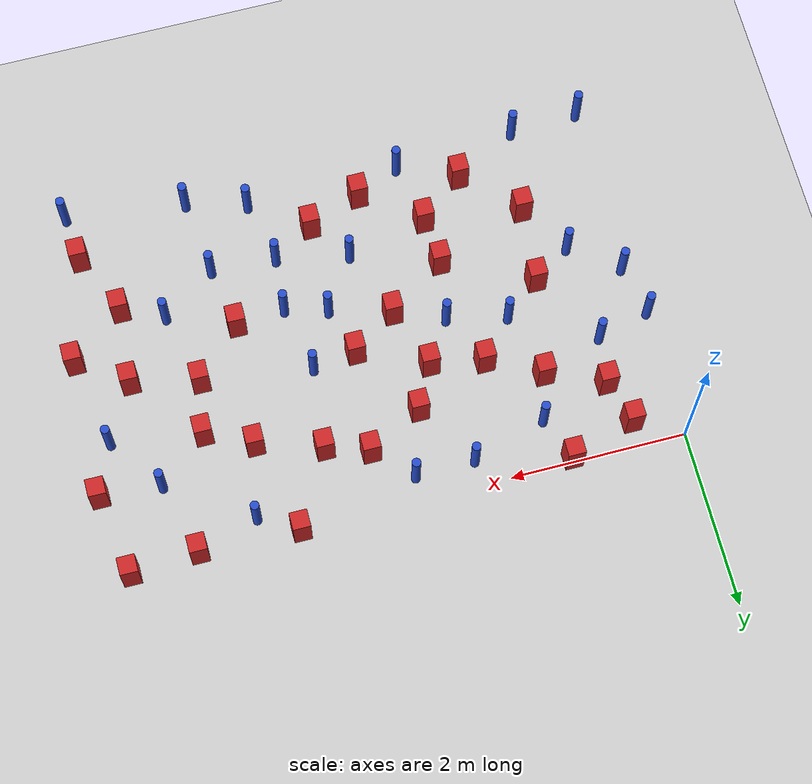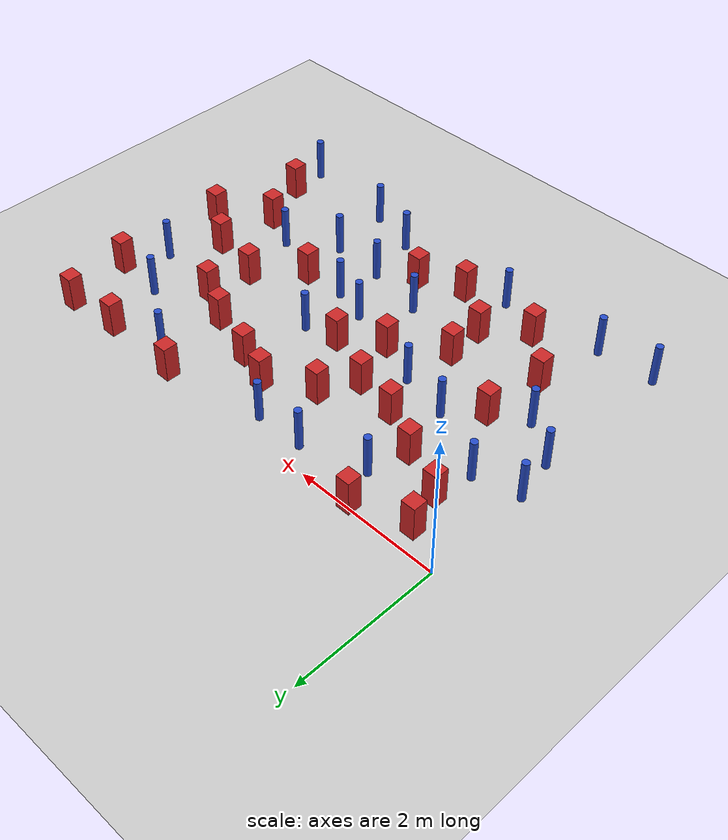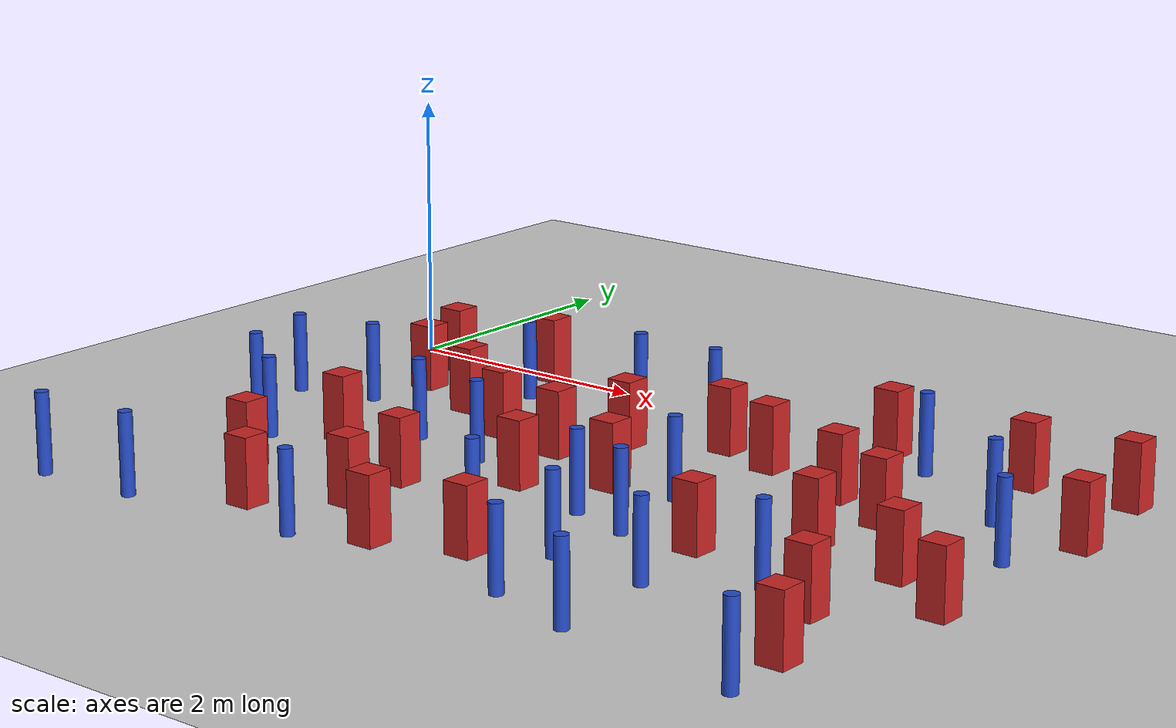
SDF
<sdf version="1.6">
 <world name="default">
  <model name="ground_plane">
   <static>1</static>
   <link name="link">
    <collision name="collision">
     <geometry><plane><normal>0 0 1</normal><size>100 100</size></plane></geometry>
     <surface><friction><ode><mu>100</mu><mu2>50</mu2></ode></friction></surface>
    </collision>
    <visual name="visual">
     <cast_shadows>0</cast_shadows>
     <geometry><plane><normal>0 0 1</normal><size>100 100</size></plane></geometry>
     <material>
      <ambient>1.0 1.0 1.0 1.0</ambient>
      <diffuse>0.8 0.8 0.8 1.0</diffuse>
      <specular>0.01 0.01 0.01 1.000000</specular>
     </material>
    </visual>
   </link>
  </model>
  <model name="NamedLocations">
   <static>true</static>
   <link name="DefaultStart"><pose>8.5 0 0 0 0 3.14</pose></link>
  </model>
  <model name="pole_obstacle0">
   <static>true</static>
   <pose>0.880135995998 -4.03369669981 2.88873142074e-08 -9.90536689879e-09 4.60219948988e-07 -1.20965994961e-07</pose>
   <link name="link">
    <pose>0 0 0.3 0 -0 0</pose>
    <inertial>
     <mass>1</mass>
     <inertia><ixx>0.145833</ixx><ixy>0</ixy><ixz>0</ixz><iyy>0.145833</iyy><iyz>0</iyz><izz>0.125</izz></inertia>
    </inertial>
    <collision name="collision">
     <geometry><cylinder><radius>0.05</radius><length>.6</length></cylinder></geometry>
    </collision>
    <visual name="visual">
     <geometry><cylinder><radius>0.05</radius><length>.6</length></cylinder></geometry>
     <material>
      <script><name>Gazebo/Blue</name><uri>file://media/materials/scripts/gazebo.material</uri></script>
     </material>
    </visual>
   </link>
  </model>
  <model name="pole_obstacle5">
   <static>true</static>
   <pose>3.96144716904 -2.53710015509 2.88873142074e-08 -9.90536690919e-09 4.60219948964e-07 -1.20965994979e-07</pose>
   <link name="link">
    <pose>0 0 0.3 0 -0 0</pose>
    <inertial>
     <mass>1</mass>
     <inertia><ixx>0.145833</ixx><ixy>0</ixy><ixz>0</ixz><iyy>0.145833</iyy><iyz>0</iyz><izz>0.125</izz></inertia>
    </inertial>
    <collision name="collision">
     <geometry><cylinder><radius>0.05</radius><length>.6</length></cylinder></geometry>
    </collision>
    <visual name="visual">
     <geometry><cylinder><radius>0.05</radius><length>.6</length></cylinder></geometry>
     <material>
      <script><name>Gazebo/Blue</name><uri>file://media/materials/scripts/gazebo.material</uri></script>
     </material>
    </visual>
   </link>
  </model>
  <model name="square_post_obstacle4">
   <static>true</static>
   <pose>5.06880561041 -1.93774286061 8.22691968438e-08 7.2212513382e-06 -7.54495500217e-07 2.29674213826e-05</pose>
   <link name="link">
    <pose>0 0 0.25 0 -0 0</pose>
    <inertial>
     <mass>100</mass>
     <inertia>
      <ixx>0.166667</ixx>
      <ixy>0</ixy>
      <ixz>0</ixz>
      <iyy>0.166667</iyy>
      <iyz>0</iyz>
      <izz>0.166667</izz>
     </inertia>
    </inertial>
    <collision name="collision"><geometry><box><size>.2 .2 .5</size></box></geometry></collision>
    <visual name="visual">
     <geometry><box><size>.2 .2 .5</size></box></geometry>
     <material>
      <script><name>Gazebo/Red</name><uri>file://media/materials/scripts/gazebo.material</uri></script>
     </material>
    </visual>
   </link>
  </model>
  <model name="pole_obstacle10">
   <static>true</static>
   <pose>3.81010568712 -1.76509671194 2.88873142074e-08 -9.90536689395e-09 4.60219949e-07 -1.20965994953e-07</pose>
   <link name="link">
    <pose>0 0 0.3 0 -0 0</pose>
    <inertial>
     <mass>1</mass>
     <inertia><ixx>0.145833</ixx><ixy>0</ixy><ixz>0</ixz><iyy>0.145833</iyy><iyz>0</iyz><izz>0.125</izz></inertia>
    </inertial>
    <collision name="collision">
     <geometry><cylinder><radius>0.05</radius><length>.6</length></cylinder></geometry>
    </collision>
    <visual name="visual">
     <geometry><cylinder><radius>0.05</radius><length>.6</length></cylinder></geometry>
     <material>
      <script><name>Gazebo/Blue</name><uri>file://media/materials/scripts/gazebo.material</uri></script>
     </material>
    </visual>
   </link>
  </model>
  <model name="pole_obstacle12">
   <static>true</static>
   <pose>2.34664239557 -0.272803003717 2.88873142074e-08 -9.90536692022e-09 4.60219948938e-07 -1.20965994984e-07</pose>
   <link name="link">
    <pose>0 0 0.3 0 -0 0</pose>
    <inertial>
     <mass>1</mass>
     <inertia><ixx>0.145833</ixx><ixy>0</ixy><ixz>0</ixz><iyy>0.145833</iyy><iyz>0</iyz><izz>0.125</izz></inertia>
    </inertial>
    <collision name="collision">
     <geometry><cylinder><radius>0.05</radius><length>.6</length></cylinder></geometry>
    </collision>
    <visual name="visual">
     <geometry><cylinder><radius>0.05</radius><length>.6</length></cylinder></geometry>
     <material>
      <script><name>Gazebo/Blue</name><uri>file://media/materials/scripts/gazebo.material</uri></script>
     </material>
    </visual>
   </link>
  </model>
  <model name="pole_obstacle21">
   <static>true</static>
   <pose>3.47930066305 -2.39734856119 2.88873142074e-08 -9.90536690232e-09 4.6021994898e-07 -1.20965994968e-07</pose>
   <link name="link">
    <pose>0 0 0.3 0 -0 0</pose>
    <inertial>
     <mass>1</mass>
     <inertia><ixx>0.145833</ixx><ixy>0</ixy><ixz>0</ixz><iyy>0.145833</iyy><iyz>0</iyz><izz>0.125</izz></inertia>
    </inertial>
    <collision name="collision">
     <geometry><cylinder><radius>0.05</radius><length>.6</length></cylinder></geometry>
    </collision>
    <visual name="visual">
     <geometry><cylinder><radius>0.05</radius><length>.6</length></cylinder></geometry>
     <material>
      <script><name>Gazebo/Blue</name><uri>file://media/materials/scripts/gazebo.material</uri></script>
     </material>
    </visual>
   </link>
  </model>
  <model name="square_post_obstacle19">
   <static>true</static>
   <pose>6.29166822977 0.0331094307546 8.22691968438e-08 7.2212513382e-06 -7.54495500217e-07 2.29674213826e-05</pose>
   <link name="link">
    <pose>0 0 0.25 0 -0 0</pose>
    <inertial>
     <mass>100</mass>
     <inertia>
      <ixx>0.166667</ixx>
      <ixy>0</ixy>
      <ixz>0</ixz>
      <iyy>0.166667</iyy>
      <iyz>0</iyz>
      <izz>0.166667</izz>
     </inertia>
    </inertial>
    <collision name="collision"><geometry><box><size>.2 .2 .5</size></box></geometry></collision>
    <visual name="visual">
     <geometry><box><size>.2 .2 .5</size></box></geometry>
     <material>
      <script><name>Gazebo/Red</name><uri>file://media/materials/scripts/gazebo.material</uri></script>
     </material>
    </visual>
   </link>
  </model>
  <model name="square_post_obstacle27">
   <static>true</static>
   <pose>5.52196709119 -0.020975182786 8.22691968438e-08 7.2212513382e-06 -7.54495500217e-07 2.29674213826e-05</pose>
   <link name="link">
    <pose>0 0 0.25 0 -0 0</pose>
    <inertial>
     <mass>100</mass>
     <inertia>
      <ixx>0.166667</ixx>
      <ixy>0</ixy>
      <ixz>0</ixz>
      <iyy>0.166667</iyy>
      <iyz>0</iyz>
      <izz>0.166667</izz>
     </inertia>
    </inertial>
    <collision name="collision"><geometry><box><size>.2 .2 .5</size></box></geometry></collision>
    <visual name="visual">
     <geometry><box><size>.2 .2 .5</size></box></geometry>
     <material>
      <script><name>Gazebo/Red</name><uri>file://media/materials/scripts/gazebo.material</uri></script>
     </material>
    </visual>
   </link>
  </model>
  <model name="pole_obstacle36">
   <static>true</static>
   <pose>1.53632306449 -1.81702683565 2.88873142074e-08 -9.90536689672e-09 4.60219948993e-07 -1.20965994959e-07</pose>
   <link name="link">
    <pose>0 0 0.3 0 -0 0</pose>
    <inertial>
     <mass>1</mass>
     <inertia><ixx>0.145833</ixx><ixy>0</ixy><ixz>0</ixz><iyy>0.145833</iyy><iyz>0</iyz><izz>0.125</izz></inertia>
    </inertial>
    <collision name="collision">
     <geometry><cylinder><radius>0.05</radius><length>.6</length></cylinder></geometry>
    </collision>
    <visual name="visual">
     <geometry><cylinder><radius>0.05</radius><length>.6</length></cylinder></geometry>
     <material>
      <script><name>Gazebo/Blue</name><uri>file://media/materials/scripts/gazebo.material</uri></script>
     </material>
    </visual>
   </link>
  </model>
  <model name="pole_obstacle37">
   <static>true</static>
   <pose>0.0818878807055 -4.07859849476 2.88873142074e-08 -9.90536689742e-09 4.60219948992e-07 -1.2096599496e-07</pose>
   <link name="link">
    <pose>0 0 0.3 0 -0 0</pose>
    <inertial>
     <mass>1</mass>
     <inertia><ixx>0.145833</ixx><ixy>0</ixy><ixz>0</ixz><iyy>0.145833</iyy><iyz>0</iyz><izz>0.125</izz></inertia>
    </inertial>
    <collision name="collision">
     <geometry><cylinder><radius>0.05</radius><length>.6</length></cylinder></geometry>
    </collision>
    <visual name="visual">
     <geometry><cylinder><radius>0.05</radius><length>.6</length></cylinder></geometry>
     <material>
      <script><name>Gazebo/Blue</name><uri>file://media/materials/scripts/gazebo.material</uri></script>
     </material>
    </visual>
   </link>
  </model>
  <model name="pole_obstacle38">
   <static>true</static>
   <pose>4.06663133027 -3.89603629017 2.88873142074e-08 -9.90536690245e-09 4.6021994898e-07 -1.20965994966e-07</pose>
   <link name="link">
    <pose>0 0 0.3 0 -0 0</pose>
    <inertial>
     <mass>1</mass>
     <inertia><ixx>0.145833</ixx><ixy>0</ixy><ixz>0</ixz><iyy>0.145833</iyy><iyz>0</iyz><izz>0.125</izz></inertia>
    </inertial>
    <collision name="collision">
     <geometry><cylinder><radius>0.05</radius><length>.6</length></cylinder></geometry>
    </collision>
    <visual name="visual">
     <geometry><cylinder><radius>0.05</radius><length>.6</length></cylinder></geometry>
     <material>
      <script><name>Gazebo/Blue</name><uri>file://media/materials/scripts/gazebo.material</uri></script>
     </material>
    </visual>
   </link>
  </model>
  <model name="pole_obstacle40">
   <static>true</static>
   <pose>1.48844902401 -0.533631812081 2.88873142074e-08 -9.90536689896e-09 4.60219948988e-07 -1.20965994962e-07</pose>
   <link name="link">
    <pose>0 0 0.3 0 -0 0</pose>
    <inertial>
     <mass>1</mass>
     <inertia><ixx>0.145833</ixx><ixy>0</ixy><ixz>0</ixz><iyy>0.145833</iyy><iyz>0</iyz><izz>0.125</izz></inertia>
    </inertial>
    <collision name="collision">
     <geometry><cylinder><radius>0.05</radius><length>.6</length></cylinder></geometry>
    </collision>
    <visual name="visual">
     <geometry><cylinder><radius>0.05</radius><length>.6</length></cylinder></geometry>
     <material>
      <script><name>Gazebo/Blue</name><uri>file://media/materials/scripts/gazebo.material</uri></script>
     </material>
    </visual>
   </link>
  </model>
  <model name="pole_obstacle42">
   <static>true</static>
   <pose>3.08162810679 -2.99361022782 2.88873142074e-08 -9.90536690232e-09 4.6021994898e-07 -1.20965994968e-07</pose>
   <link name="link">
    <pose>0 0 0.3 0 -0 0</pose>
    <inertial>
     <mass>1</mass>
     <inertia><ixx>0.145833</ixx><ixy>0</ixy><ixz>0</ixz><iyy>0.145833</iyy><iyz>0</iyz><izz>0.125</izz></inertia>
    </inertial>
    <collision name="collision">
     <geometry><cylinder><radius>0.05</radius><length>.6</length></cylinder></geometry>
    </collision>
    <visual name="visual">
     <geometry><cylinder><radius>0.05</radius><length>.6</length></cylinder></geometry>
     <material>
      <script><name>Gazebo/Blue</name><uri>file://media/materials/scripts/gazebo.material</uri></script>
     </material>
    </visual>
   </link>
  </model>
  <model name="square_post_obstacle42">
   <static>true</static>
   <pose>5.75782111801 -2.99787388884 8.22691968438e-08 7.2212513382e-06 -7.54495500217e-07 2.29674213826e-05</pose>
   <link name="link">
    <pose>0 0 0.25 0 -0 0</pose>
    <inertial>
     <mass>100</mass>
     <inertia>
      <ixx>0.166667</ixx>
      <ixy>0</ixy>
      <ixz>0</ixz>
      <iyy>0.166667</iyy>
      <iyz>0</iyz>
      <izz>0.166667</izz>
     </inertia>
    </inertial>
    <collision name="collision"><geometry><box><size>.2 .2 .5</size></box></geometry></collision>
    <visual name="visual">
     <geometry><box><size>.2 .2 .5</size></box></geometry>
     <material>
      <script><name>Gazebo/Red</name><uri>file://media/materials/scripts/gazebo.material</uri></script>
     </material>
    </visual>
   </link>
  </model>
  <model name="pole_obstacle58">
   <static>true</static>
   <pose>0.124869947321 -2.06352819971 2.88873142074e-08 -9.905366898e-09 4.6021994899e-07 -1.2096599496e-07</pose>
   <link name="link">
    <pose>0 0 0.3 0 -0 0</pose>
    <inertial>
     <mass>1</mass>
     <inertia><ixx>0.145833</ixx><ixy>0</ixy><ixz>0</ixz><iyy>0.145833</iyy><iyz>0</iyz><izz>0.125</izz></inertia>
    </inertial>
    <collision name="collision">
     <geometry><cylinder><radius>0.05</radius><length>.6</length></cylinder></geometry>
    </collision>
    <visual name="visual">
     <geometry><cylinder><radius>0.05</radius><length>.6</length></cylinder></geometry>
     <material>
      <script><name>Gazebo/Blue</name><uri>file://media/materials/scripts/gazebo.material</uri></script>
     </material>
    </visual>
   </link>
  </model>
  <model name="square_post_obstacle49">
   <static>true</static>
   <pose>3.91805140849 -0.824429768619 8.22691968438e-08 7.2212513382e-06 -7.54495500217e-07 2.29674213826e-05</pose>
   <link name="link">
    <pose>0 0 0.25 0 -0 0</pose>
    <inertial>
     <mass>100</mass>
     <inertia>
      <ixx>0.166667</ixx>
      <ixy>0</ixy>
      <ixz>0</ixz>
      <iyy>0.166667</iyy>
      <iyz>0</iyz>
      <izz>0.166667</izz>
     </inertia>
    </inertial>
    <collision name="collision"><geometry><box><size>.2 .2 .5</size></box></geometry></collision>
    <visual name="visual">
     <geometry><box><size>.2 .2 .5</size></box></geometry>
     <material>
      <script><name>Gazebo/Red</name><uri>file://media/materials/scripts/gazebo.material</uri></script>
     </material>
    </visual>
   </link>
  </model>
  <model name="pole_obstacle64">
   <static>true</static>
   <pose>0.000662981833559 -1.47923829137 2.88873142074e-08 -9.90536690093e-09 4.60219948983e-07 -1.20965994964e-07</pose>
   <link name="link">
    <pose>0 0 0.3 0 -0 0</pose>
    <inertial>
     <mass>1</mass>
     <inertia><ixx>0.145833</ixx><ixy>0</ixy><ixz>0</ixz><iyy>0.145833</iyy><iyz>0</iyz><izz>0.125</izz></inertia>
    </inertial>
    <collision name="collision">
     <geometry><cylinder><radius>0.05</radius><length>.6</length></cylinder></geometry>
    </collision>
    <visual name="visual">
     <geometry><cylinder><radius>0.05</radius><length>.6</length></cylinder></geometry>
     <material>
      <script><name>Gazebo/Blue</name><uri>file://media/materials/scripts/gazebo.material</uri></script>
     </material>
    </visual>
   </link>
  </model>
  <model name="pole_obstacle68">
   <static>true</static>
   <pose>4.75526428016 -4.09671443555 2.88873142074e-08 -9.90536690842e-09 4.60219948965e-07 -1.20965994976e-07</pose>
   <link name="link">
    <pose>0 0 0.3 0 -0 0</pose>
    <inertial>
     <mass>1</mass>
     <inertia><ixx>0.145833</ixx><ixy>0</ixy><ixz>0</ixz><iyy>0.145833</iyy><iyz>0</iyz><izz>0.125</izz></inertia>
    </inertial>
    <collision name="collision">
     <geometry><cylinder><radius>0.05</radius><length>.6</length></cylinder></geometry>
    </collision>
    <visual name="visual">
     <geometry><cylinder><radius>0.05</radius><length>.6</length></cylinder></geometry>
     <material>
      <script><name>Gazebo/Blue</name><uri>file://media/materials/scripts/gazebo.material</uri></script>
     </material>
    </visual>
   </link>
  </model>
  <model name="square_post_obstacle51">
   <static>true</static>
   <pose>1.62947599661 -3.64054977438 8.22691968438e-08 7.2212513382e-06 -7.54495500217e-07 2.29674213826e-05</pose>
   <link name="link">
    <pose>0 0 0.25 0 -0 0</pose>
    <inertial>
     <mass>100</mass>
     <inertia>
      <ixx>0.166667</ixx>
      <ixy>0</ixy>
      <ixz>0</ixz>
      <iyy>0.166667</iyy>
      <iyz>0</iyz>
      <izz>0.166667</izz>
     </inertia>
    </inertial>
    <collision name="collision"><geometry><box><size>.2 .2 .5</size></box></geometry></collision>
    <visual name="visual">
     <geometry><box><size>.2 .2 .5</size></box></geometry>
     <material>
      <script><name>Gazebo/Red</name><uri>file://media/materials/scripts/gazebo.material</uri></script>
     </material>
    </visual>
   </link>
  </model>
  <model name="pole_obstacle70">
   <static>true</static>
   <pose>3.90870354363 -3.16283327793 2.88873142074e-08 -9.90536690232e-09 4.6021994898e-07 -1.20965994968e-07</pose>
   <link name="link">
    <pose>0 0 0.3 0 -0 0</pose>
    <inertial>
     <mass>1</mass>
     <inertia><ixx>0.145833</ixx><ixy>0</ixy><ixz>0</ixz><iyy>0.145833</iyy><iyz>0</iyz><izz>0.125</izz></inertia>
    </inertial>
    <collision name="collision">
     <geometry><cylinder><radius>0.05</radius><length>.6</length></cylinder></geometry>
    </collision>
    <visual name="visual">
     <geometry><cylinder><radius>0.05</radius><length>.6</length></cylinder></geometry>
     <material>
      <script><name>Gazebo/Blue</name><uri>file://media/materials/scripts/gazebo.material</uri></script>
     </material>
    </visual>
   </link>
  </model>
  <model name="square_post_obstacle62">
   <static>true</static>
   <pose>0.690230237132 -0.781380511651 8.22691968438e-08 7.2212513382e-06 -7.54495500217e-07 2.29674213826e-05</pose>
   <link name="link">
    <pose>0 0 0.25 0 -0 0</pose>
    <inertial>
     <mass>100</mass>
     <inertia>
      <ixx>0.166667</ixx>
      <ixy>0</ixy>
      <ixz>0</ixz>
      <iyy>0.166667</iyy>
      <iyz>0</iyz>
      <izz>0.166667</izz>
     </inertia>
    </inertial>
    <collision name="collision"><geometry><box><size>.2 .2 .5</size></box></geometry></collision>
    <visual name="visual">
     <geometry><box><size>.2 .2 .5</size></box></geometry>
     <material>
      <script><name>Gazebo/Red</name><uri>file://media/materials/scripts/gazebo.material</uri></script>
     </material>
    </visual>
   </link>
  </model>
  <model name="pole_obstacle80">
   <static>true</static>
   <pose>5.74605848467 -0.848301897702 2.88873142074e-08 -9.90536689837e-09 4.60219948989e-07 -1.2096599496e-07</pose>
   <link name="link">
    <pose>0 0 0.3 0 -0 0</pose>
    <inertial>
     <mass>1</mass>
     <inertia><ixx>0.145833</ixx><ixy>0</ixy><ixz>0</ixz><iyy>0.145833</iyy><iyz>0</iyz><izz>0.125</izz></inertia>
    </inertial>
    <collision name="collision">
     <geometry><cylinder><radius>0.05</radius><length>.6</length></cylinder></geometry>
    </collision>
    <visual name="visual">
     <geometry><cylinder><radius>0.05</radius><length>.6</length></cylinder></geometry>
     <material>
      <script><name>Gazebo/Blue</name><uri>file://media/materials/scripts/gazebo.material</uri></script>
     </material>
    </visual>
   </link>
  </model>
  <model name="square_post_obstacle74">
   <static>true</static>
   <pose>2.54411049904 -1.48970674147 8.22691968438e-08 7.2212513382e-06 -7.54495500217e-07 2.29674213826e-05</pose>
   <link name="link">
    <pose>0 0 0.25 0 -0 0</pose>
    <inertial>
     <mass>100</mass>
     <inertia>
      <ixx>0.166667</ixx>
      <ixy>0</ixy>
      <ixz>0</ixz>
      <iyy>0.166667</iyy>
      <iyz>0</iyz>
      <izz>0.166667</izz>
     </inertia>
    </inertial>
    <collision name="collision"><geometry><box><size>.2 .2 .5</size></box></geometry></collision>
    <visual name="visual">
     <geometry><box><size>.2 .2 .5</size></box></geometry>
     <material>
      <script><name>Gazebo/Red</name><uri>file://media/materials/scripts/gazebo.material</uri></script>
     </material>
    </visual>
   </link>
  </model>
  <model name="square_post_obstacle80">
   <static>true</static>
   <pose>4.65326316669 -1.06259303048 8.22691968438e-08 7.2212513382e-06 -7.54495500217e-07 2.29674213826e-05</pose>
   <link name="link">
    <pose>0 0 0.25 0 -0 0</pose>
    <inertial>
     <mass>100</mass>
     <inertia>
      <ixx>0.166667</ixx>
      <ixy>0</ixy>
      <ixz>0</ixz>
      <iyy>0.166667</iyy>
      <iyz>0</iyz>
      <izz>0.166667</izz>
     </inertia>
    </inertial>
    <collision name="collision"><geometry><box><size>.2 .2 .5</size></box></geometry></collision>
    <visual name="visual">
     <geometry><box><size>.2 .2 .5</size></box></geometry>
     <material>
      <script><name>Gazebo/Red</name><uri>file://media/materials/scripts/gazebo.material</uri></script>
     </material>
    </visual>
   </link>
  </model>
  <model name="square_post_obstacle85">
   <static>true</static>
   <pose>2.7859586206 -2.19226296548 8.22691968438e-08 7.2212513382e-06 -7.54495500217e-07 2.29674213826e-05</pose>
   <link name="link">
    <pose>0 0 0.25 0 -0 0</pose>
    <inertial>
     <mass>100</mass>
     <inertia>
      <ixx>0.166667</ixx>
      <ixy>0</ixy>
      <ixz>0</ixz>
      <iyy>0.166667</iyy>
      <iyz>0</iyz>
      <izz>0.166667</izz>
     </inertia>
    </inertial>
    <collision name="collision"><geometry><box><size>.2 .2 .5</size></box></geometry></collision>
    <visual name="visual">
     <geometry><box><size>.2 .2 .5</size></box></geometry>
     <material>
      <script><name>Gazebo/Red</name><uri>file://media/materials/scripts/gazebo.material</uri></script>
     </material>
    </visual>
   </link>
  </model>
  <model name="pole_obstacle93">
   <static>true</static>
   <pose>4.8255796199 -0.233756539004 2.88873142074e-08 -9.90536689628e-09 4.60219948994e-07 -1.20965994959e-07</pose>
   <link name="link">
    <pose>0 0 0.3 0 -0 0</pose>
    <inertial>
     <mass>1</mass>
     <inertia><ixx>0.145833</ixx><ixy>0</ixy><ixz>0</ixz><iyy>0.145833</iyy><iyz>0</iyz><izz>0.125</izz></inertia>
    </inertial>
    <collision name="collision">
     <geometry><cylinder><radius>0.05</radius><length>.6</length></cylinder></geometry>
    </collision>
    <visual name="visual">
     <geometry><cylinder><radius>0.05</radius><length>.6</length></cylinder></geometry>
     <material>
      <script><name>Gazebo/Blue</name><uri>file://media/materials/scripts/gazebo.material</uri></script>
     </material>
    </visual>
   </link>
  </model>
  <model name="pole_obstacle95">
   <static>true</static>
   <pose>2.21998121215 -1.97052135649 2.88873142074e-08 -9.90536689589e-09 4.60219948995e-07 -1.20965994957e-07</pose>
   <link name="link">
    <pose>0 0 0.3 0 -0 0</pose>
    <inertial>
     <mass>1</mass>
     <inertia><ixx>0.145833</ixx><ixy>0</ixy><ixz>0</ixz><iyy>0.145833</iyy><iyz>0</iyz><izz>0.125</izz></inertia>
    </inertial>
    <collision name="collision">
     <geometry><cylinder><radius>0.05</radius><length>.6</length></cylinder></geometry>
    </collision>
    <visual name="visual">
     <geometry><cylinder><radius>0.05</radius><length>.6</length></cylinder></geometry>
     <material>
      <script><name>Gazebo/Blue</name><uri>file://media/materials/scripts/gazebo.material</uri></script>
     </material>
    </visual>
   </link>
  </model>
  <model name="square_post_obstacle90">
   <static>true</static>
   <pose>1.93365326403 -1.37317515752 8.22691968438e-08 7.2212513382e-06 -7.54495500217e-07 2.29674213826e-05</pose>
   <link name="link">
    <pose>0 0 0.25 0 -0 0</pose>
    <inertial>
     <mass>100</mass>
     <inertia>
      <ixx>0.166667</ixx>
      <ixy>0</ixy>
      <ixz>0</ixz>
      <iyy>0.166667</iyy>
      <iyz>0</iyz>
      <izz>0.166667</izz>
     </inertia>
    </inertial>
    <collision name="collision"><geometry><box><size>.2 .2 .5</size></box></geometry></collision>
    <visual name="visual">
     <geometry><box><size>.2 .2 .5</size></box></geometry>
     <material>
      <script><name>Gazebo/Red</name><uri>file://media/materials/scripts/gazebo.material</uri></script>
     </material>
    </visual>
   </link>
  </model>
  <model name="square_post_obstacle93">
   <static>true</static>
   <pose>6.38420073262 -2.50634423541 8.22691968438e-08 7.2212513382e-06 -7.54495500217e-07 2.29674213826e-05</pose>
   <link name="link">
    <pose>0 0 0.25 0 -0 0</pose>
    <inertial>
     <mass>100</mass>
     <inertia>
      <ixx>0.166667</ixx>
      <ixy>0</ixy>
      <ixz>0</ixz>
      <iyy>0.166667</iyy>
      <iyz>0</iyz>
      <izz>0.166667</izz>
     </inertia>
    </inertial>
    <collision name="collision"><geometry><box><size>.2 .2 .5</size></box></geometry></collision>
    <visual name="visual">
     <geometry><box><size>.2 .2 .5</size></box></geometry>
     <material>
      <script><name>Gazebo/Red</name><uri>file://media/materials/scripts/gazebo.material</uri></script>
     </material>
    </visual>
   </link>
  </model>
  <model name="square_post_obstacle103">
   <static>true</static>
   <pose>6.07332973154 -3.72381438897 8.22691968438e-08 7.2212513382e-06 -7.54495500217e-07 2.29674213826e-05</pose>
   <link name="link">
    <pose>0 0 0.25 0 -0 0</pose>
    <inertial>
     <mass>100</mass>
     <inertia>
      <ixx>0.166667</ixx>
      <ixy>0</ixy>
      <ixz>0</ixz>
      <iyy>0.166667</iyy>
      <iyz>0</iyz>
      <izz>0.166667</izz>
     </inertia>
    </inertial>
    <collision name="collision"><geometry><box><size>.2 .2 .5</size></box></geometry></collision>
    <visual name="visual">
     <geometry><box><size>.2 .2 .5</size></box></geometry>
     <material>
      <script><name>Gazebo/Red</name><uri>file://media/materials/scripts/gazebo.material</uri></script>
     </material>
    </visual>
   </link>
  </model>
  <model name="square_post_obstacle112">
   <static>true</static>
   <pose>4.52518918425 -2.49462650083 8.22691968438e-08 7.2212513382e-06 -7.54495500217e-07 2.29674213826e-05</pose>
   <link name="link">
    <pose>0 0 0.25 0 -0 0</pose>
    <inertial>
     <mass>100</mass>
     <inertia>
      <ixx>0.166667</ixx>
      <ixy>0</ixy>
      <ixz>0</ixz>
      <iyy>0.166667</iyy>
      <iyz>0</iyz>
      <izz>0.166667</izz>
     </inertia>
    </inertial>
    <collision name="collision"><geometry><box><size>.2 .2 .5</size></box></geometry></collision>
    <visual name="visual">
     <geometry><box><size>.2 .2 .5</size></box></geometry>
     <material>
      <script><name>Gazebo/Red</name><uri>file://media/materials/scripts/gazebo.material</uri></script>
     </material>
    </visual>
   </link>
  </model>
  <model name="square_post_obstacle113">
   <static>true</static>
   <pose>5.83307297532 -2.11929926455 8.22691968438e-08 7.2212513382e-06 -7.54495500217e-07 2.29674213826e-05</pose>
   <link name="link">
    <pose>0 0 0.25 0 -0 0</pose>
    <inertial>
     <mass>100</mass>
     <inertia>
      <ixx>0.166667</ixx>
      <ixy>0</ixy>
      <ixz>0</ixz>
      <iyy>0.166667</iyy>
      <iyz>0</iyz>
      <izz>0.166667</izz>
     </inertia>
    </inertial>
    <collision name="collision"><geometry><box><size>.2 .2 .5</size></box></geometry></collision>
    <visual name="visual">
     <geometry><box><size>.2 .2 .5</size></box></geometry>
     <material>
      <script><name>Gazebo/Red</name><uri>file://media/materials/scripts/gazebo.material</uri></script>
     </material>
    </visual>
   </link>
  </model>
  <model name="square_post_obstacle115">
   <static>true</static>
   <pose>6.4405033363 -0.906626122743 8.22691968438e-08 7.2212513382e-06 -7.54495500217e-07 2.29674213826e-05</pose>
   <link name="link">
    <pose>0 0 0.25 0 -0 0</pose>
    <inertial>
     <mass>100</mass>
     <inertia>
      <ixx>0.166667</ixx>
      <ixy>0</ixy>
      <ixz>0</ixz>
      <iyy>0.166667</iyy>
      <iyz>0</iyz>
      <izz>0.166667</izz>
     </inertia>
    </inertial>
    <collision name="collision"><geometry><box><size>.2 .2 .5</size></box></geometry></collision>
    <visual name="visual">
     <geometry><box><size>.2 .2 .5</size></box></geometry>
     <material>
      <script><name>Gazebo/Red</name><uri>file://media/materials/scripts/gazebo.material</uri></script>
     </material>
    </visual>
   </link>
  </model>
  <model name="pole_obstacle117">
   <static>true</static>
   <pose>3.02449834229 -0.260122547696 2.88873142074e-08 -9.90536692022e-09 4.60219948938e-07 -1.20965994984e-07</pose>
   <link name="link">
    <pose>0 0 0.3 0 -0 0</pose>
    <inertial>
     <mass>1</mass>
     <inertia><ixx>0.145833</ixx><ixy>0</ixy><ixz>0</ixz><iyy>0.145833</iyy><iyz>0</iyz><izz>0.125</izz></inertia>
    </inertial>
    <collision name="collision">
     <geometry><cylinder><radius>0.05</radius><length>.6</length></cylinder></geometry>
    </collision>
    <visual name="visual">
     <geometry><cylinder><radius>0.05</radius><length>.6</length></cylinder></geometry>
     <material>
      <script><name>Gazebo/Blue</name><uri>file://media/materials/scripts/gazebo.material</uri></script>
     </material>
    </visual>
   </link>
  </model>
  <model name="square_post_obstacle120">
   <static>true</static>
   <pose>5.17559757449 -1.3229938402 8.22691968438e-08 7.2212513382e-06 -7.54495500217e-07 2.29674213826e-05</pose>
   <link name="link">
    <pose>0 0 0.25 0 -0 0</pose>
    <inertial>
     <mass>100</mass>
     <inertia>
      <ixx>0.166667</ixx>
      <ixy>0</ixy>
      <ixz>0</ixz>
      <iyy>0.166667</iyy>
      <iyz>0</iyz>
      <izz>0.166667</izz>
     </inertia>
    </inertial>
    <collision name="collision"><geometry><box><size>.2 .2 .5</size></box></geometry></collision>
    <visual name="visual">
     <geometry><box><size>.2 .2 .5</size></box></geometry>
     <material>
      <script><name>Gazebo/Red</name><uri>file://media/materials/scripts/gazebo.material</uri></script>
     </material>
    </visual>
   </link>
  </model>
  <model name="pole_obstacle125">
   <static>true</static>
   <pose>6.19995255421 -1.47950643039 2.88873142074e-08 -9.90536689445e-09 4.60219948999e-07 -1.20965994956e-07</pose>
   <link name="link">
    <pose>0 0 0.3 0 -0 0</pose>
    <inertial>
     <mass>1</mass>
     <inertia><ixx>0.145833</ixx><ixy>0</ixy><ixz>0</ixz><iyy>0.145833</iyy><iyz>0</iyz><izz>0.125</izz></inertia>
    </inertial>
    <collision name="collision">
     <geometry><cylinder><radius>0.05</radius><length>.6</length></cylinder></geometry>
    </collision>
    <visual name="visual">
     <geometry><cylinder><radius>0.05</radius><length>.6</length></cylinder></geometry>
     <material>
      <script><name>Gazebo/Blue</name><uri>file://media/materials/scripts/gazebo.material</uri></script>
     </material>
    </visual>
   </link>
  </model>
  <model name="pole_obstacle132">
   <static>true</static>
   <pose>0.608361810569 -1.31945683878 2.88873142074e-08 -9.90536689855e-09 4.60219948989e-07 -1.20965994962e-07</pose>
   <link name="link">
    <pose>0 0 0.3 0 -0 0</pose>
    <inertial>
     <mass>1</mass>
     <inertia><ixx>0.145833</ixx><ixy>0</ixy><ixz>0</ixz><iyy>0.145833</iyy><iyz>0</iyz><izz>0.125</izz></inertia>
    </inertial>
    <collision name="collision">
     <geometry><cylinder><radius>0.05</radius><length>.6</length></cylinder></geometry>
    </collision>
    <visual name="visual">
     <geometry><cylinder><radius>0.05</radius><length>.6</length></cylinder></geometry>
     <material>
      <script><name>Gazebo/Blue</name><uri>file://media/materials/scripts/gazebo.material</uri></script>
     </material>
    </visual>
   </link>
  </model>
  <model name="square_post_obstacle129">
   <static>true</static>
   <pose>3.43169772804 -3.45859360018 8.22691968438e-08 7.2212513382e-06 -7.54495500217e-07 2.29674213826e-05</pose>
   <link name="link">
    <pose>0 0 0.25 0 -0 0</pose>
    <inertial>
     <mass>100</mass>
     <inertia>
      <ixx>0.166667</ixx>
      <ixy>0</ixy>
      <ixz>0</ixz>
      <iyy>0.166667</iyy>
      <iyz>0</iyz>
      <izz>0.166667</izz>
     </inertia>
    </inertial>
    <collision name="collision"><geometry><box><size>.2 .2 .5</size></box></geometry></collision>
    <visual name="visual">
     <geometry><box><size>.2 .2 .5</size></box></geometry>
     <material>
      <script><name>Gazebo/Red</name><uri>file://media/materials/scripts/gazebo.material</uri></script>
     </material>
    </visual>
   </link>
  </model>
  <model name="square_post_obstacle131">
   <static>true</static>
   <pose>2.8088276887 -3.69690326509 8.22691968438e-08 7.2212513382e-06 -7.54495500217e-07 2.29674213826e-05</pose>
   <link name="link">
    <pose>0 0 0.25 0 -0 0</pose>
    <inertial>
     <mass>100</mass>
     <inertia>
      <ixx>0.166667</ixx>
      <ixy>0</ixy>
      <ixz>0</ixz>
      <iyy>0.166667</iyy>
      <iyz>0</iyz>
      <izz>0.166667</izz>
     </inertia>
    </inertial>
    <collision name="collision"><geometry><box><size>.2 .2 .5</size></box></geometry></collision>
    <visual name="visual">
     <geometry><box><size>.2 .2 .5</size></box></geometry>
     <material>
      <script><name>Gazebo/Red</name><uri>file://media/materials/scripts/gazebo.material</uri></script>
     </material>
    </visual>
   </link>
  </model>
  <model name="pole_obstacle141">
   <static>true</static>
   <pose>0.663191564508 -2.4607868542 2.88873142074e-08 -9.90536689636e-09 4.60219948994e-07 -1.20965994958e-07</pose>
   <link name="link">
    <pose>0 0 0.3 0 -0 0</pose>
    <inertial>
     <mass>1</mass>
     <inertia><ixx>0.145833</ixx><ixy>0</ixy><ixz>0</ixz><iyy>0.145833</iyy><iyz>0</iyz><izz>0.125</izz></inertia>
    </inertial>
    <collision name="collision">
     <geometry><cylinder><radius>0.05</radius><length>.6</length></cylinder></geometry>
    </collision>
    <visual name="visual">
     <geometry><cylinder><radius>0.05</radius><length>.6</length></cylinder></geometry>
     <material>
      <script><name>Gazebo/Blue</name><uri>file://media/materials/scripts/gazebo.material</uri></script>
     </material>
    </visual>
   </link>
  </model>
  <model name="pole_obstacle142">
   <static>true</static>
   <pose>6.12773083923 -4.26513600543 2.88873142074e-08 -9.90536690842e-09 4.60219948965e-07 -1.20965994976e-07</pose>
   <link name="link">
    <pose>0 0 0.3 0 -0 0</pose>
    <inertial>
     <mass>1</mass>
     <inertia><ixx>0.145833</ixx><ixy>0</ixy><ixz>0</ixz><iyy>0.145833</iyy><iyz>0</iyz><izz>0.125</izz></inertia>
    </inertial>
    <collision name="collision">
     <geometry><cylinder><radius>0.05</radius><length>.6</length></cylinder></geometry>
    </collision>
    <visual name="visual">
     <geometry><cylinder><radius>0.05</radius><length>.6</length></cylinder></geometry>
     <material>
      <script><name>Gazebo/Blue</name><uri>file://media/materials/scripts/gazebo.material</uri></script>
     </material>
    </visual>
   </link>
  </model>
  <model name="square_post_obstacle152">
   <static>true</static>
   <pose>1.1139614142 -2.17396368476 8.22691968438e-08 7.2212513382e-06 -7.54495500217e-07 2.29674213826e-05</pose>
   <link name="link">
    <pose>0 0 0.25 0 -0 0</pose>
    <inertial>
     <mass>100</mass>
     <inertia>
      <ixx>0.166667</ixx>
      <ixy>0</ixy>
      <ixz>0</ixz>
      <iyy>0.166667</iyy>
      <iyz>0</iyz>
      <izz>0.166667</izz>
     </inertia>
    </inertial>
    <collision name="collision"><geometry><box><size>.2 .2 .5</size></box></geometry></collision>
    <visual name="visual">
     <geometry><box><size>.2 .2 .5</size></box></geometry>
     <material>
      <script><name>Gazebo/Red</name><uri>file://media/materials/scripts/gazebo.material</uri></script>
     </material>
    </visual>
   </link>
  </model>
  <model name="square_post_obstacle155">
   <static>true</static>
   <pose>1.29464448295 -0.0376214602666 8.22691968438e-08 7.2212513382e-06 -7.54495500217e-07 2.29674213826e-05</pose>
   <link name="link">
    <pose>0 0 0.25 0 -0 0</pose>
    <inertial>
     <mass>100</mass>
     <inertia>
      <ixx>0.166667</ixx>
      <ixy>0</ixy>
      <ixz>0</ixz>
      <iyy>0.166667</iyy>
      <iyz>0</iyz>
      <izz>0.166667</izz>
     </inertia>
    </inertial>
    <collision name="collision"><geometry><box><size>.2 .2 .5</size></box></geometry></collision>
    <visual name="visual">
     <geometry><box><size>.2 .2 .5</size></box></geometry>
     <material>
      <script><name>Gazebo/Red</name><uri>file://media/materials/scripts/gazebo.material</uri></script>
     </material>
    </visual>
   </link>
  </model>
  <model name="pole_obstacle173">
   <static>true</static>
   <pose>2.29329045586 -3.9266250874 2.88873142074e-08 -9.90536690232e-09 4.6021994898e-07 -1.20965994968e-07</pose>
   <link name="link">
    <pose>0 0 0.3 0 -0 0</pose>
    <inertial>
     <mass>1</mass>
     <inertia><ixx>0.145833</ixx><ixy>0</ixy><ixz>0</ixz><iyy>0.145833</iyy><iyz>0</iyz><izz>0.125</izz></inertia>
    </inertial>
    <collision name="collision">
     <geometry><cylinder><radius>0.05</radius><length>.6</length></cylinder></geometry>
    </collision>
    <visual name="visual">
     <geometry><cylinder><radius>0.05</radius><length>.6</length></cylinder></geometry>
     <material>
      <script><name>Gazebo/Blue</name><uri>file://media/materials/scripts/gazebo.material</uri></script>
     </material>
    </visual>
   </link>
  </model>
  <model name="square_post_obstacle173">
   <static>true</static>
   <pose>1.33533107495 -1.05683899294 8.22691968438e-08 7.2212513382e-06 -7.54495500217e-07 2.29674213826e-05</pose>
   <link name="link">
    <pose>0 0 0.25 0 -0 0</pose>
    <inertial>
     <mass>100</mass>
     <inertia>
      <ixx>0.166667</ixx>
      <ixy>0</ixy>
      <ixz>0</ixz>
      <iyy>0.166667</iyy>
      <iyz>0</iyz>
      <izz>0.166667</izz>
     </inertia>
    </inertial>
    <collision name="collision"><geometry><box><size>.2 .2 .5</size></box></geometry></collision>
    <visual name="visual">
     <geometry><box><size>.2 .2 .5</size></box></geometry>
     <material>
      <script><name>Gazebo/Red</name><uri>file://media/materials/scripts/gazebo.material</uri></script>
     </material>
    </visual>
   </link>
  </model>
  <model name="square_post_obstacle183">
   <static>true</static>
   <pose>2.79619597902 -1.00059784495 8.22691968438e-08 7.2212513382e-06 -7.54495500217e-07 2.29674213826e-05</pose>
   <link name="link">
    <pose>0 0 0.25 0 -0 0</pose>
    <inertial>
     <mass>100</mass>
     <inertia>
      <ixx>0.166667</ixx>
      <ixy>0</ixy>
      <ixz>0</ixz>
      <iyy>0.166667</iyy>
      <iyz>0</iyz>
      <izz>0.166667</izz>
     </inertia>
    </inertial>
    <collision name="collision"><geometry><box><size>.2 .2 .5</size></box></geometry></collision>
    <visual name="visual">
     <geometry><box><size>.2 .2 .5</size></box></geometry>
     <material>
      <script><name>Gazebo/Red</name><uri>file://media/materials/scripts/gazebo.material</uri></script>
     </material>
    </visual>
   </link>
  </model>
  <model name="pole_obstacle190">
   <static>true</static>
   <pose>4.65587807841 -3.20863175957 2.88873142074e-08 -9.90536690245e-09 4.6021994898e-07 -1.20965994966e-07</pose>
   <link name="link">
    <pose>0 0 0.3 0 -0 0</pose>
    <inertial>
     <mass>1</mass>
     <inertia><ixx>0.145833</ixx><ixy>0</ixy><ixz>0</ixz><iyy>0.145833</iyy><iyz>0</iyz><izz>0.125</izz></inertia>
    </inertial>
    <collision name="collision">
     <geometry><cylinder><radius>0.05</radius><length>.6</length></cylinder></geometry>
    </collision>
    <visual name="visual">
     <geometry><cylinder><radius>0.05</radius><length>.6</length></cylinder></geometry>
     <material>
      <script><name>Gazebo/Blue</name><uri>file://media/materials/scripts/gazebo.material</uri></script>
     </material>
    </visual>
   </link>
  </model>
  <model name="square_post_obstacle198">
   <static>true</static>
   <pose>2.11366546391 -2.65437184712 8.22691968438e-08 7.2212513382e-06 -7.54495500217e-07 2.29674213826e-05</pose>
   <link name="link">
    <pose>0 0 0.25 0 -0 0</pose>
    <inertial>
     <mass>100</mass>
     <inertia>
      <ixx>0.166667</ixx>
      <ixy>0</ixy>
      <ixz>0</ixz>
      <iyy>0.166667</iyy>
      <iyz>0</iyz>
      <izz>0.166667</izz>
     </inertia>
    </inertial>
    <collision name="collision"><geometry><box><size>.2 .2 .5</size></box></geometry></collision>
    <visual name="visual">
     <geometry><box><size>.2 .2 .5</size></box></geometry>
     <material>
      <script><name>Gazebo/Red</name><uri>file://media/materials/scripts/gazebo.material</uri></script>
     </material>
    </visual>
   </link>
  </model>
  <model name="square_post_obstacle206">
   <static>true</static>
   <pose>4.39009769883 0.0153852193347 8.22691968438e-08 7.2212513382e-06 -7.54495500217e-07 2.29674213826e-05</pose>
   <link name="link">
    <pose>0 0 0.25 0 -0 0</pose>
    <inertial>
     <mass>100</mass>
     <inertia>
      <ixx>0.166667</ixx>
      <ixy>0</ixy>
      <ixz>0</ixz>
      <iyy>0.166667</iyy>
      <iyz>0</iyz>
      <izz>0.166667</izz>
     </inertia>
    </inertial>
    <collision name="collision"><geometry><box><size>.2 .2 .5</size></box></geometry></collision>
    <visual name="visual">
     <geometry><box><size>.2 .2 .5</size></box></geometry>
     <material>
      <script><name>Gazebo/Red</name><uri>file://media/materials/scripts/gazebo.material</uri></script>
     </material>
    </visual>
   </link>
  </model>
  <model name="square_post_obstacle208">
   <static>true</static>
   <pose>1.03662343593 -3.0537099541 8.22691968438e-08 7.2212513382e-06 -7.54495500217e-07 2.29674213826e-05</pose>
   <link name="link">
    <pose>0 0 0.25 0 -0 0</pose>
    <inertial>
     <mass>100</mass>
     <inertia>
      <ixx>0.166667</ixx>
      <ixy>0</ixy>
      <ixz>0</ixz>
      <iyy>0.166667</iyy>
      <iyz>0</iyz>
      <izz>0.166667</izz>
     </inertia>
    </inertial>
    <collision name="collision"><geometry><box><size>.2 .2 .5</size></box></geometry></collision>
    <visual name="visual">
     <geometry><box><size>.2 .2 .5</size></box></geometry>
     <material>
      <script><name>Gazebo/Red</name><uri>file://media/materials/scripts/gazebo.material</uri></script>
     </material>
    </visual>
   </link>
  </model>
  <model name="pole_obstacle198">
   <static>true</static>
   <pose>5.27818128842 -2.78506106526 2.88873142074e-08 -9.90536690245e-09 4.6021994898e-07 -1.20965994966e-07</pose>
   <link name="link">
    <pose>0 0 0.3 0 -0 0</pose>
    <inertial>
     <mass>1</mass>
     <inertia><ixx>0.145833</ixx><ixy>0</ixy><ixz>0</ixz><iyy>0.145833</iyy><iyz>0</iyz><izz>0.125</izz></inertia>
    </inertial>
    <collision name="collision">
     <geometry><cylinder><radius>0.05</radius><length>.6</length></cylinder></geometry>
    </collision>
    <visual name="visual">
     <geometry><cylinder><radius>0.05</radius><length>.6</length></cylinder></geometry>
     <material>
      <script><name>Gazebo/Blue</name><uri>file://media/materials/scripts/gazebo.material</uri></script>
     </material>
    </visual>
   </link>
  </model>
  <model name="square_post_obstacle220">
   <static>true</static>
   <pose>0.543867032622 -0.279634035341 8.22691968438e-08 7.2212513382e-06 -7.54495500217e-07 2.29674213826e-05</pose>
   <link name="link">
    <pose>0 0 0.25 0 -0 0</pose>
    <inertial>
     <mass>100</mass>
     <inertia>
      <ixx>0.166667</ixx>
      <ixy>0</ixy>
      <ixz>0</ixz>
      <iyy>0.166667</iyy>
      <iyz>0</iyz>
      <izz>0.166667</izz>
     </inertia>
    </inertial>
    <collision name="collision"><geometry><box><size>.2 .2 .5</size></box></geometry></collision>
    <visual name="visual">
     <geometry><box><size>.2 .2 .5</size></box></geometry>
     <material>
      <script><name>Gazebo/Red</name><uri>file://media/materials/scripts/gazebo.material</uri></script>
     </material>
    </visual>
   </link>
  </model>
  <model name="square_post_obstacle228">
   <static>true</static>
   <pose>3.43391003262 -0.662659035341 8.22691968438e-08 7.22125133819e-06 -7.54495500217e-07 2.29674213826e-05</pose>
   <link name="link">
    <pose>0 0 0.25 0 -0 0</pose>
    <inertial>
     <mass>100</mass>
     <inertia>
      <ixx>0.166667</ixx>
      <ixy>0</ixy>
      <ixz>0</ixz>
      <iyy>0.166667</iyy>
      <iyz>0</iyz>
      <izz>0.166667</izz>
     </inertia>
    </inertial>
    <collision name="collision"><geometry><box><size>.2 .2 .5</size></box></geometry></collision>
    <visual name="visual">
     <geometry><box><size>.2 .2 .5</size></box></geometry>
     <material>
      <script><name>Gazebo/Red</name><uri>file://media/materials/scripts/gazebo.material</uri></script>
     </material>
    </visual>
   </link>
  </model>
  <model name="square_post_obstacle229">
   <static>true</static>
   <pose>2.15586003262 -3.20564003534 8.22691968438e-08 7.2212513382e-06 -7.54495500217e-07 2.29674213826e-05</pose>
   <link name="link">
    <pose>0 0 0.25 0 -0 0</pose>
    <inertial>
     <mass>100</mass>
     <inertia>
      <ixx>0.166667</ixx>
      <ixy>0</ixy>
      <ixz>0</ixz>
      <iyy>0.166667</iyy>
      <iyz>0</iyz>
      <izz>0.166667</izz>
     </inertia>
    </inertial>
    <collision name="collision"><geometry><box><size>.2 .2 .5</size></box></geometry></collision>
    <visual name="visual">
     <geometry><box><size>.2 .2 .5</size></box></geometry>
     <material>
      <script><name>Gazebo/Red</name><uri>file://media/materials/scripts/gazebo.material</uri></script>
     </material>
    </visual>
   </link>
  </model>
  <model name="square_post_obstacle231">
   <static>true</static>
   <pose>3.30882003262 -1.83478003534 8.22691968438e-08 7.22125133819e-06 -7.54495500217e-07 2.29674213826e-05</pose>
   <link name="link">
    <pose>0 0 0.25 0 -0 0</pose>
    <inertial>
     <mass>100</mass>
     <inertia>
      <ixx>0.166667</ixx>
      <ixy>0</ixy>
      <ixz>0</ixz>
      <iyy>0.166667</iyy>
      <iyz>0</iyz>
      <izz>0.166667</izz>
     </inertia>
    </inertial>
    <collision name="collision"><geometry><box><size>.2 .2 .5</size></box></geometry></collision>
    <visual name="visual">
     <geometry><box><size>.2 .2 .5</size></box></geometry>
     <material>
      <script><name>Gazebo/Red</name><uri>file://media/materials/scripts/gazebo.material</uri></script>
     </material>
    </visual>
   </link>
  </model>
 </world>
</sdf>
